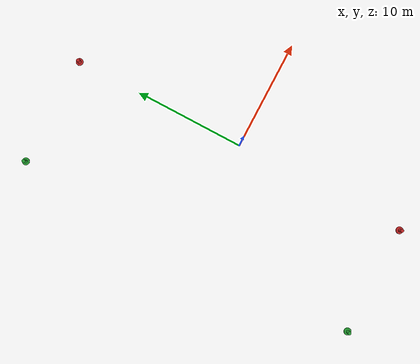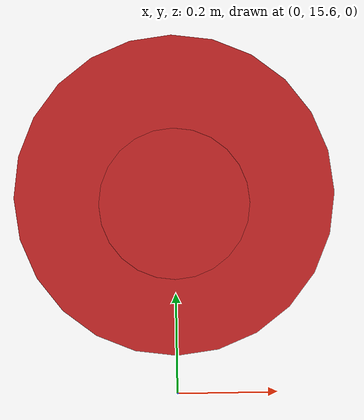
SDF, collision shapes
<?xml version="1.0"?>
<!-- Model for the short navigation course -->
<sdf version="1.6">
  <model name="roboboat_navigation_channel">

    <!-- Starboard_border -->
    <include>
      <name>red_bound_0</name>
      <pose>0 16 0 0 0 0</pose>
      <uri>https://fuel.gazebosim.org/1.0/openrobotics/models/mb_marker_buoy_red</uri>

      <plugin name="vrx::PolyhedraBuoyancyDrag"
              filename="libPolyhedraBuoyancyDrag.so">
        <fluid_density>1000</fluid_density>
        <fluid_level>0.0</fluid_level>
        <linear_drag>25.0</linear_drag>
        <angular_drag>2.0</angular_drag>
        <buoyancy name="collision_outer">
          <link_name>link</link_name>
          <pose>0 0 -0.3 0 0 0</pose>
          <geometry>
            <cylinder>
              <radius>0.325</radius>
              <length>0.1</length>
            </cylinder>
          </geometry>
        </buoyancy>
        <wavefield>
          <size>1000 1000</size>
          <cell_count>50 50></cell_count>
          <wave>
            <model>PMS</model>
            <period>5.0</period>
            <number>3</number>
            <scale>1.1</scale>
            <gain>0.3</gain>
            <direction>1 0</direction>
            <angle>0.4</angle>
            <tau>2.0</tau>
            <amplitude>0.0</amplitude>
            <steepness>0.0</steepness>
          </wave>
        </wavefield>
      </plugin>

    </include>

    <include>
      <name>red_bound_1</name>
      <pose>0 -16 0 0 0 0</pose>
      <uri>https://fuel.gazebosim.org/1.0/openrobotics/models/mb_marker_buoy_red</uri>

      <plugin name="vrx::PolyhedraBuoyancyDrag"
              filename="libPolyhedraBuoyancyDrag.so">
        <fluid_density>1000</fluid_density>
        <fluid_level>0.0</fluid_level>
        <linear_drag>25.0</linear_drag>
        <angular_drag>2.0</angular_drag>
        <buoyancy name="collision_outer">
          <link_name>link</link_name>
          <pose>0 0 -0.3 0 0 0</pose>
          <geometry>
            <cylinder>
              <radius>0.325</radius>
              <length>0.1</length>
            </cylinder>
          </geometry>
        </buoyancy>
        <wavefield>
          <size>1000 1000</size>
          <cell_count>50 50></cell_count>
          <wave>
            <model>PMS</model>
            <period>5.0</period>
            <number>3</number>
            <scale>1.1</scale>
            <gain>0.3</gain>
            <direction>1 0</direction>
            <angle>0.4</angle>
            <tau>2.0</tau>
            <amplitude>0.0</amplitude>
            <steepness>0.0</steepness>
          </wave>
        </wavefield>
      </plugin>

    </include>

    <!-- Port_border -->
    <include>
      <name>green_bound_0</name>
      <pose>-10 16 0.2 0 0 0</pose>
      <uri>https://fuel.gazebosim.org/1.0/openrobotics/models/mb_marker_buoy_green</uri>

      <plugin name="vrx::PolyhedraBuoyancyDrag"
              filename="libPolyhedraBuoyancyDrag.so">
        <fluid_density>1000</fluid_density>
        <fluid_level>0.0</fluid_level>
        <linear_drag>25.0</linear_drag>
        <angular_drag>2.0</angular_drag>
        <buoyancy name="collision_outer">
          <link_name>link</link_name>
          <pose>0 0 -0.3 0 0 0</pose>
          <geometry>
            <cylinder>
              <radius>0.325</radius>
              <length>0.1</length>
            </cylinder>
          </geometry>
        </buoyancy>
        <wavefield>
          <size>1000 1000</size>
          <cell_count>50 50></cell_count>
          <wave>
            <model>PMS</model>
            <period>5.0</period>
            <number>3</number>
            <scale>1.1</scale>
            <gain>0.3</gain>
            <direction>1 0</direction>
            <angle>0.4</angle>
            <tau>2.0</tau>
            <amplitude>0.0</amplitude>
            <steepness>0.0</steepness>
          </wave>
        </wavefield>
      </plugin>

    </include>

    <include>
      <name>green_bound_1</name>
      <pose>-10 -16 0.2 0 0 0</pose>
      <uri>https://fuel.gazebosim.org/1.0/openrobotics/models/mb_marker_buoy_green</uri>

      <plugin name="vrx::PolyhedraBuoyancyDrag"
              filename="libPolyhedraBuoyancyDrag.so">
        <fluid_density>1000</fluid_density>
        <fluid_level>0.0</fluid_level>
        <linear_drag>25.0</linear_drag>
        <angular_drag>2.0</angular_drag>
        <buoyancy name="collision_outer">
          <link_name>link</link_name>
          <pose>0 0 -0.3 0 0 0</pose>
          <geometry>
            <cylinder>
              <radius>0.325</radius>
              <length>0.1</length>
            </cylinder>
          </geometry>
        </buoyancy>
        <wavefield>
          <size>1000 1000</size>
          <cell_count>50 50></cell_count>
          <wave>
            <model>PMS</model>
            <period>5.0</period>
            <number>3</number>
            <scale>1.1</scale>
            <gain>0.3</gain>
            <direction>1 0</direction>
            <angle>0.4</angle>
            <tau>2.0</tau>
            <amplitude>0.0</amplitude>
            <steepness>0.0</steepness>
          </wave>
        </wavefield>
      </plugin>

    </include>

  </model>

</sdf>

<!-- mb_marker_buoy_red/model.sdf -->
<sdf version="1.6">
  <model name="mb_marker_buoy_red">
    <link name="link">
      <inertial>
        <pose>0 0 -2 0 0 0</pose>
        <!-- Mass determined based on buoyancy geometry so object
             floats at mid-point of sphere -->
        <mass>20</mass>
        <!-- Mark only - based on cylinder -->
        <inertia>
          <ixx>1.0</ixx>
          <ixy>0</ixy>
          <ixz>0</ixz>
          <iyy>1.0</iyy>
          <iyz>0</iyz>
          <izz>0.1</izz>
        </inertia>
      </inertial>
      <collision name="collision_inner">
        <pose>0 -0.02 0.02 0 0 0</pose>
        <geometry>
          <cylinder>
            <radius>0.15</radius>
            <length>1.15</length>
          </cylinder>
        </geometry>
      </collision>
      <collision name="collision_outer">
        <pose>0 0 -0.3 0 0 0</pose>
        <geometry>
          <cylinder>
            <radius>0.325</radius>
            <length>0.1</length>
          </cylinder>
        </geometry>
      </collision>
      <visual name="visual">
        <pose>0 0 0 1.57079 0 0</pose>
        <geometry>
	        <mesh><uri>model://mb_marker_buoy_red/meshes/mb_marker_buoy.dae</uri></mesh>
        </geometry>
        <material>
          <script>
            <uri>model://mb_marker_buoy_red/materials/scripts/mb_marker_buoy.material</uri>
            <name>mb_marker_buoy/Red</name>
          </script>
        </material>
      </visual>
    </link>
    <plugin name="BuoyancyPlugin" filename="libbuoyancy_gazebo_plugin.so">
      <wave_model>ocean_waves</wave_model>
      <fluid_density>1000</fluid_density>
      <fluid_level>0.0</fluid_level>
      <linear_drag>25.0</linear_drag>
      <angular_drag>2.0</angular_drag>
      <buoyancy name="buoyancy_sphere">
        <link_name>link</link_name>
        <pose>0 0 -0.12 0 0 0</pose>
        <geometry>
          <sphere>
            <radius>0.325</radius>
          </sphere>
        </geometry>
      </buoyancy>
    </plugin>
  </model>
</sdf>

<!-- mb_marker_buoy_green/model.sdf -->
<sdf version="1.6">
  <model name="mb_marker_buoy_green">
    <link name="link">
      <inertial>
        <pose>0 0 -2 0 0 0</pose>
        <!-- Mass determined based on buoyancy geometry so object
             floats at mid-point of sphere -->
        <mass>20</mass>
        <!-- Mark only - based on cylinder -->
        <inertia>
          <ixx>1.0</ixx>
          <ixy>0</ixy>
          <ixz>0</ixz>
          <iyy>1.0</iyy>
          <iyz>0</iyz>
          <izz>0.1</izz>
        </inertia>
      </inertial>
      <collision name="collision_inner">
        <pose>0 -0.02 0.02 0 0 0</pose>
        <geometry>
          <cylinder>
            <radius>0.15</radius>
            <length>1.15</length>
          </cylinder>
        </geometry>
      </collision>
      <collision name="collision_outer">
        <pose>0 0 -0.3 0 0 0</pose>
        <geometry>
          <cylinder>
            <radius>0.325</radius>
            <length>0.1</length>
          </cylinder>
        </geometry>
      </collision>
      <visual name="visual">
        <pose>0 0 0 1.57079 0 0</pose>
        <geometry>
	        <mesh><uri>model://mb_marker_buoy_red/meshes/mb_marker_buoy.dae</uri></mesh>
        </geometry>
        <material>
          <script>
            <uri>model://mb_marker_buoy_green/materials/scripts/mb_marker_buoy.material</uri>
            <name>mb_marker_buoy/Green</name>
          </script>
        </material>
      </visual>
    </link>
    <plugin name="BuoyancyPlugin" filename="libbuoyancy_gazebo_plugin.so">
      <wave_model>ocean_waves</wave_model>
      <fluid_density>1000</fluid_density>
      <fluid_level>0.0</fluid_level>
      <linear_drag>25.0</linear_drag>
      <angular_drag>2.0</angular_drag>
      <buoyancy name="buoyancy_sphere">
        <link_name>link</link_name>
        <pose>0 0 -0.12 0 0 0</pose>
        <geometry>
          <sphere>
            <radius>0.325</radius>
          </sphere>
        </geometry>
      </buoyancy>
    </plugin>
  </model>
</sdf>
